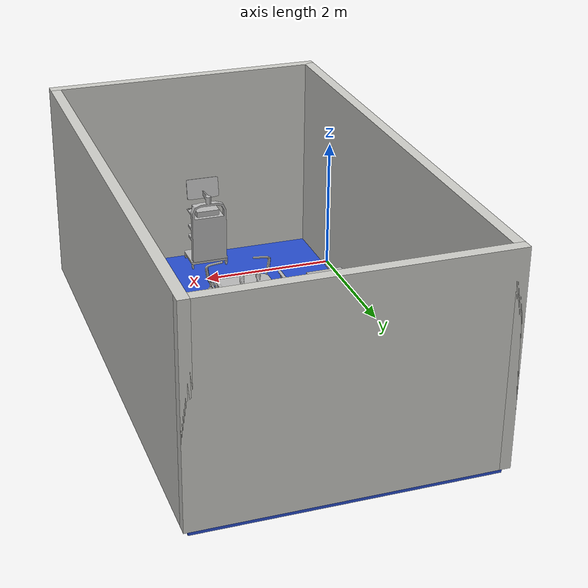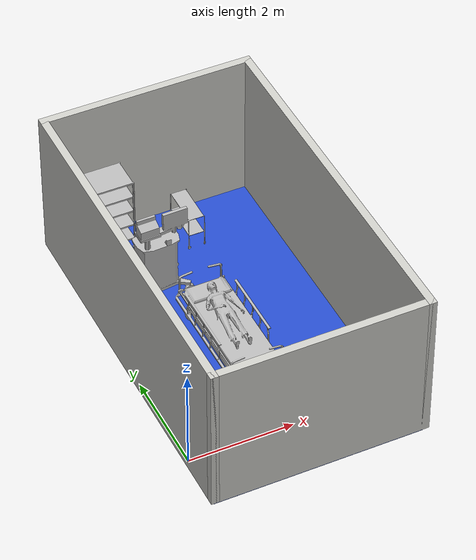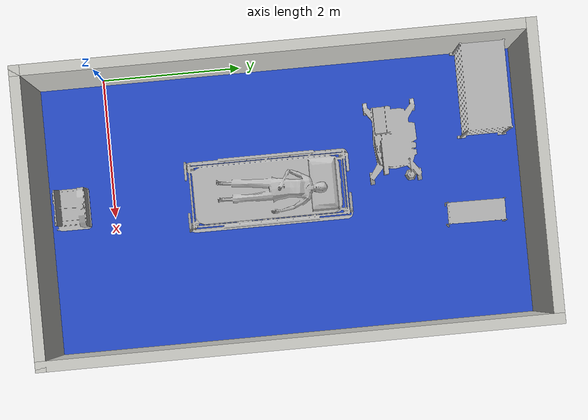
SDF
<sdf version="1.7">
 <world name="world">
  <gravity>0 0 -9.8</gravity>
  <physics name="default_physics" default="0" type="ode">
   <max_step_size>0.001</max_step_size>
   <real_time_factor>1</real_time_factor>
   <real_time_update_rate>1000</real_time_update_rate>
  </physics>
  <scene><ambient>0.6 0.6 0.6 1</ambient><background>0.4 0.4 0.4 1</background><shadows>0</shadows></scene>
  <light name="sun" type="directional">
   <pose>0 0 10 0 -0 0</pose>
   <diffuse>0.8 0.8 0.8 1</diffuse>
   <specular>0.2 0.2 0.2 1</specular>
   <attenuation>
    <range>1000</range>
    <constant>0.9</constant>
    <linear>0.01</linear>
    <quadratic>0.001</quadratic>
   </attenuation>
   <direction>-0.5 0.1 -0.9</direction>
   <spot><inner_angle>0</inner_angle><outer_angle>0</outer_angle><falloff>0</falloff></spot>
  </light>
  <model name="floor">
   <static>true</static>
   <link name="floor_link">
    <collision name="floor_collision">
     <geometry><plane><normal>0 0 1</normal><size>4 7</size></plane></geometry>
     <pose>2 2.5 -0.05 0 0 0</pose>
    </collision>
    <visual name="floor_visual">
     <geometry><box><size>4 7 0.1</size></box></geometry>
     <pose>2 2.5 -0.05 0 0 0</pose>
     <material>
      <script><uri>file://media/materials/scripts/gazebo.material</uri><name>Gazebo/Blue</name></script>
     </material>
    </visual>
   </link>
  </model>
  <model name="TrolleyBedPatient_1">
   <frame name="TrolleyBedPatient::__model__" attached_to="TrolleyBedPatient::body">
    <pose relative_to="__model__">1.83202 2.2612 0 0 -0 0</pose>
   </frame>
   <static>1</static>
   <link name="TrolleyBedPatient::body">
    <pose relative_to="TrolleyBedPatient::__model__">0 0 0 0 -0 0</pose>
    <visual name="visual">
     <geometry><mesh><uri>model://TrolleyBedPatient/meshes/TrolleyBedPatient.obj</uri></mesh></geometry>
    </visual>
    <collision name="collision">
     <geometry><mesh><uri>model://TrolleyBedPatient/meshes/TrolleyBedPatient.obj</uri></mesh></geometry>
    </collision>
   </link>
  </model>
  <model name="AnesthesiaMachine_1">
   <frame name="AnesthesiaMachine::__model__" attached_to="AnesthesiaMachine::body">
    <pose relative_to="__model__">1.28478 4.1127 0 0 0 -3.12971</pose>
   </frame>
   <static>1</static>
   <link name="AnesthesiaMachine::body">
    <pose relative_to="AnesthesiaMachine::__model__">0 0 0 0 -0 0</pose>
    <visual name="visual">
     <geometry><mesh><uri>model://AnesthesiaMachine/meshes/AnesthesiaMachine.obj</uri></mesh></geometry>
    </visual>
    <collision name="collision">
     <geometry><mesh><uri>model://AnesthesiaMachine/meshes/AnesthesiaMachine_Col.obj</uri></mesh></geometry>
    </collision>
   </link>
  </model>
  <model name="StorageRack_2">
   <frame name="StorageRack::__model__" attached_to="StorageRack::link">
    <pose relative_to="__model__">0.69866 5.4178 -8e-06 0 4e-06 0</pose>
   </frame>
   <link name="StorageRack::link">
    <pose relative_to="StorageRack::__model__">0 0 0 0 -0 0</pose>
    <visual name="visual">
     <geometry><mesh><uri>model://StorageRack/meshes/StorageRack.obj</uri></mesh></geometry>
    </visual>
    <collision name="collision">
     <geometry><mesh><uri>model://StorageRack/meshes/StorageRack.obj</uri></mesh></geometry>
    </collision>
   </link>
   <static>1</static>
  </model>
  <model name="SurgicalTrolley_2">
   <frame name="SurgicalTrolley::__model__" attached_to="SurgicalTrolley::body">
    <pose relative_to="__model__">2.41142 5.2085 0 0 0 -1.58175</pose>
   </frame>
   <static>1</static>
   <link name="SurgicalTrolley::body">
    <pose relative_to="SurgicalTrolley::__model__">0 0 0 0 -0 0</pose>
    <visual name="visual">
     <geometry><mesh><uri>model://SurgicalTrolley/meshes/trolley.obj</uri></mesh></geometry>
    </visual>
    <collision name="collision">
     <geometry><mesh><uri>model://SurgicalTrolley/meshes/trolley.obj</uri></mesh></geometry>
    </collision>
   </link>
  </model>
  <model name="InstrumentCart1_3">
   <frame name="InstrumentCart1::__model__" attached_to="InstrumentCart1::body">
    <pose relative_to="__model__">1.83539 -0.5879 0 0 -0 0</pose>
   </frame>
   <static>1</static>
   <link name="InstrumentCart1::body">
    <pose relative_to="InstrumentCart1::__model__">0 0 0 0 -0 0</pose>
    <visual name="visual">
     <geometry><mesh><uri>model://InstrumentCart1/meshes/InstrumentCart1.obj</uri></mesh></geometry>
    </visual>
    <collision name="collision">
     <geometry><mesh><uri>model://InstrumentCart1/meshes/InstrumentCart1.obj</uri></mesh></geometry>
    </collision>
   </link>
  </model>
  <magnetic_field>6e-06 2.3e-05 -4.2e-05</magnetic_field>
  <atmosphere type="adiabatic"/>
  <spherical_coordinates>
   <surface_model>EARTH_WGS84</surface_model>
   <latitude_deg>0</latitude_deg>
   <longitude_deg>0</longitude_deg>
   <elevation>0</elevation>
   <heading_deg>0</heading_deg>
  </spherical_coordinates>
  <model name="customSurgeryRoom">
   <pose>2 2.5 0 0 -0 0</pose>
   <link name="Wall_1">
    <collision name="Wall_1_Collision">
     <geometry><box><size>4.15 0.15 3</size></box></geometry>
     <pose>0 0 1.5 0 -0 0</pose>
    </collision>
    <visual name="Wall_1_Visual">
     <pose>0 0 1.5 0 -0 0</pose>
     <geometry><box><size>4.15 0.15 3</size></box></geometry>
     <material>
      <script><uri>file://media/materials/scripts/gazebo.material</uri><name>Gazebo/CeilingTiled</name></script>
      <ambient>1 1 1 1</ambient>
     </material>
     <meta><layer>0</layer></meta>
    </visual>
    <pose>0 -3.5 0 0 -0 0</pose>
   </link>
   <link name="Wall_2">
    <collision name="Wall_2_Collision">
     <geometry><box><size>7.15 0.15 3</size></box></geometry>
     <pose>0 0 1.5 0 -0 0</pose>
    </collision>
    <visual name="Wall_2_Visual">
     <pose>0 0 1.5 0 -0 0</pose>
     <geometry><box><size>7.15 0.15 3</size></box></geometry>
     <material>
      <script><uri>file://media/materials/scripts/gazebo.material</uri><name>Gazebo/CeilingTiled</name></script>
      <ambient>1 1 1 1</ambient>
     </material>
     <meta><layer>0</layer></meta>
    </visual>
    <pose>2 -0 0 0 -0 1.5708</pose>
   </link>
   <link name="Wall_5">
    <collision name="Wall_5_Collision">
     <geometry><box><size>7.15 0.15 3</size></box></geometry>
     <pose>0 0 1.5 0 -0 0</pose>
    </collision>
    <visual name="Wall_5_Visual">
     <pose>0 0 1.5 0 -0 0</pose>
     <geometry><box><size>7.15 0.15 3</size></box></geometry>
     <material>
      <script><uri>file://media/materials/scripts/gazebo.material</uri><name>Gazebo/CeilingTiled</name></script>
      <ambient>1 1 1 1</ambient>
     </material>
     <meta><layer>0</layer></meta>
    </visual>
    <pose>-2 -0 0 0 -0 1.5708</pose>
   </link>
   <link name="Wall_6">
    <collision name="Wall_6_Collision">
     <geometry><box><size>4.15 0.15 3</size></box></geometry>
     <pose>0 0 1.5 0 -0 0</pose>
    </collision>
    <visual name="Wall_6_Visual">
     <pose>0 0 1.5 0 -0 0</pose>
     <geometry><box><size>4.15 0.15 3</size></box></geometry>
     <material>
      <script><uri>file://media/materials/scripts/gazebo.material</uri><name>Gazebo/CeilingTiled</name></script>
      <ambient>1 1 1 1</ambient>
     </material>
     <meta><layer>0</layer></meta>
    </visual>
    <pose>0 3.5 0 0 -0 0</pose>
   </link>
   <static>1</static>
  </model>
 </world>
</sdf>
